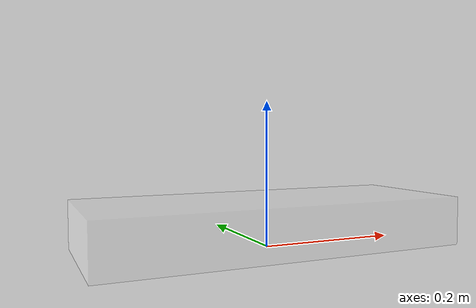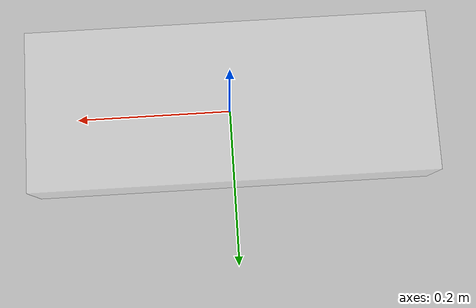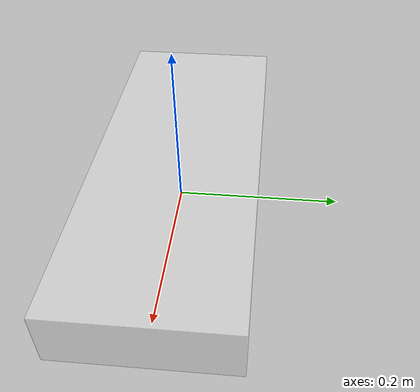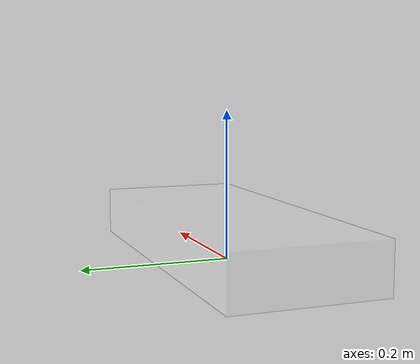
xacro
<?xml version="1.0"?>
<robot name="watney" xmlns:xacro="http://www.ros.org/wiki/xacro">

    <xacro:include filename="$(find roboclaw_driver)/urdf/physical.xacro" />
    <xacro:include filename="$(find roboclaw_driver)/urdf/materials.xacro" />
    <xacro:include filename="$(find roboclaw_driver)/urdf/functions.xacro" />
    <xacro:include filename="$(find roboclaw_driver)/urdf/joints.xacro" />

    <link name="base_link" />

	<link name="baseplate">
		<visual>
			<material name="acrylic"/>
			<xacro:baseplate_geometry/>
		</visual>
		<collision>
			<xacro:baseplate_geometry/>
		</collision>
		<inertial>
			<xacro:baseplate_inertial/>
		</inertial>
	</link>

    <xacro:fixed_offset_joint parent="base_link" child="baseplate" offset="0 0 0"/>

</robot>

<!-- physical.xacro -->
<robot name="jetsoncar" xmlns:xacro="http://www.ros.org/wiki/xacro">

	<!-- X axis direction is forward, Y axis direction is left -->

	<!-- Baseplate related properties -->
	<xacro:property name="baseplate_width" value="0.20" />
	<xacro:property name="baseplate_length" value="0.50" />
	<xacro:property name="baseplate_thickness" value="0.0675" />
	<xacro:property name="baseplate_weight" value="1.000" />

	<!-- Baseplate -->
	<xacro:macro name="baseplate_geometry">
		<origin xyz="0 0 ${baseplate_thickness/2}" rpy="0 0 0" /> <!-- origin (0,0,0) is in the center of the box, so place the origin of this in the bottom of baseplate -->
		<geometry>
			<box size="${baseplate_length} ${baseplate_width} ${baseplate_thickness}"/> <!-- 50x20x6.75 cm, X-axis is front of vehicle -->
		</geometry>
	</xacro:macro>

	<xacro:macro name="baseplate_inertial">
		<origin xyz="0 0 ${baseplate_thickness/2}" rpy="0 0 0" /> <!-- origin (0,0,0) is in the center of the box, so place the origin of this in the bottom of baseplate -->
		<xacro:box_inertial mass="${baseplate_weight}" length="${baseplate_length}" width="${baseplate_width}" height="${baseplate_thickness}" />
	</xacro:macro>

</robot>

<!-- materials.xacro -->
<robot name="watney" xmlns:xacro="http://www.ros.org/wiki/xacro">

<material name="acrylic">
  <color rgba="1.0 1.0 1.0 0.4"/>
</material>

</robot>

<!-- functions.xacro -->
<robot name="watney" xmlns:xacro="http://www.ros.org/wiki/xacro">

	<!-- Based on https://en.wikipedia.org/wiki/List_of_moments_of_inertia -->
	<xacro:macro name="box_inertial" params="mass width length height">
		<mass value="${mass}" />
		<inertia ixx="${1/12*mass*(width*width+height*height)}"
			 ixy="0"
			 ixz="0"
			 iyy="${1/12*mass*(length*length+height*height)}"
			 iyz="0"
			 izz="${1/12*mass*(width*width+length*length)}"
		/>
	</xacro:macro>

</robot>

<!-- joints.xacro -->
<robot name="jetsoncar" xmlns:xacro="http://www.ros.org/wiki/xacro">

	<xacro:macro name="fixed_offset_joint" params="parent child offset">
		<joint name="${parent}_to_${child}" type="fixed">
			<parent link="${parent}"/>
			<child link="${child}"/>
			<origin xyz="${offset}" rpy="0 0 0" /> <!-- offset from parent to child, so with direction based in parent frame -->
		</joint>
	</xacro:macro>

</robot>
